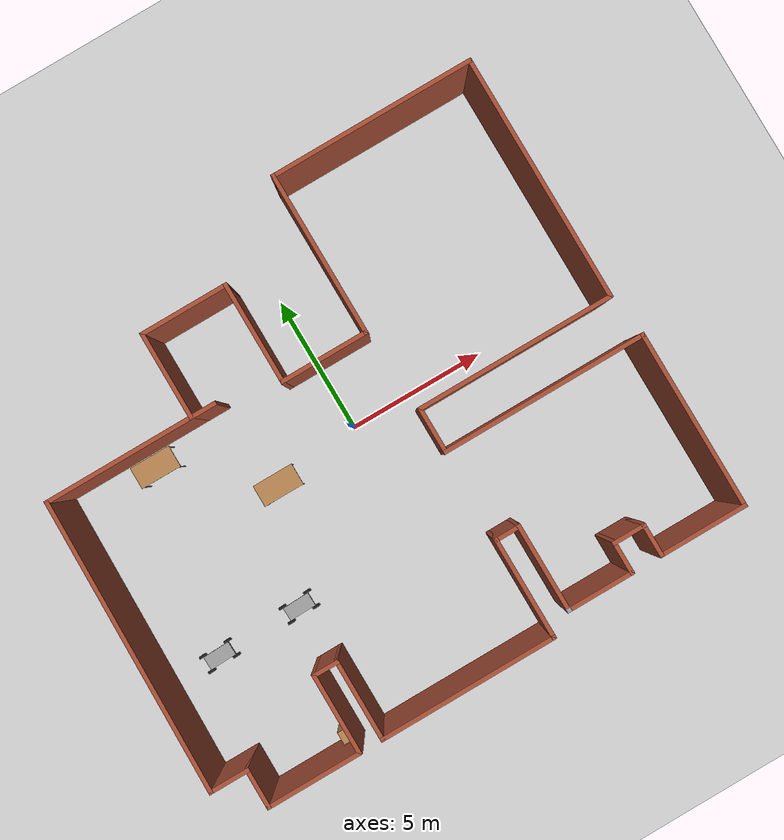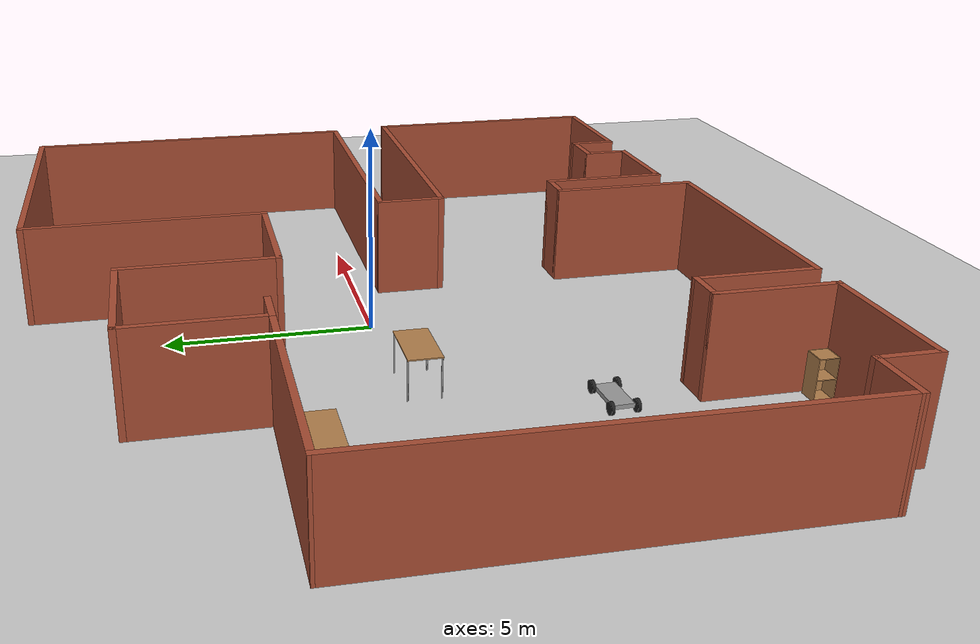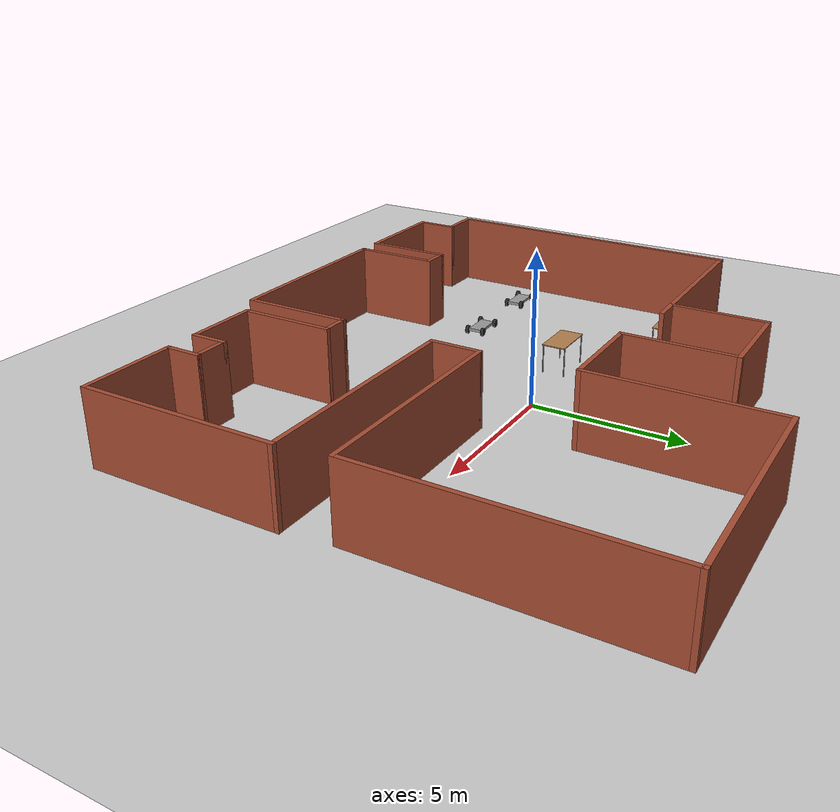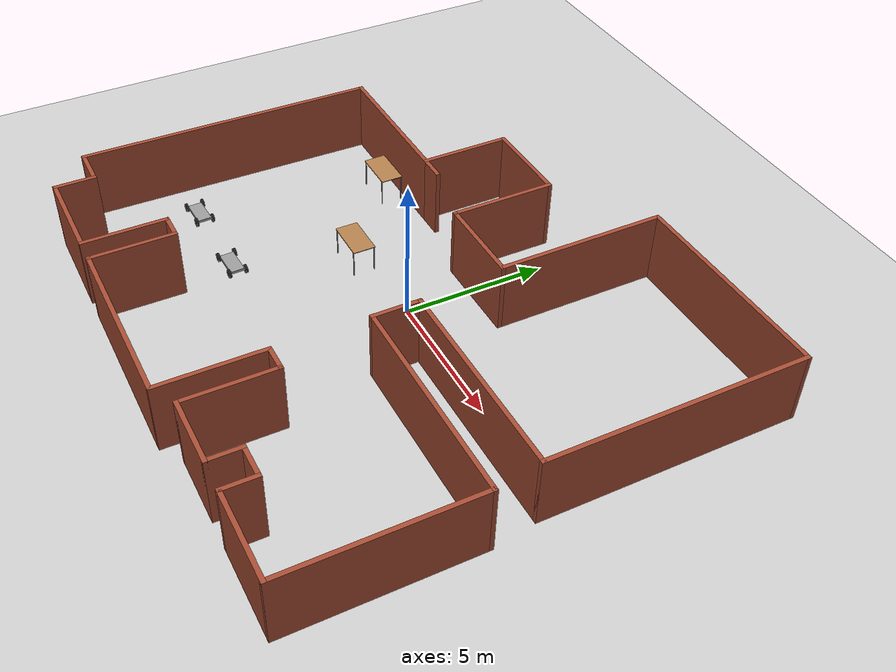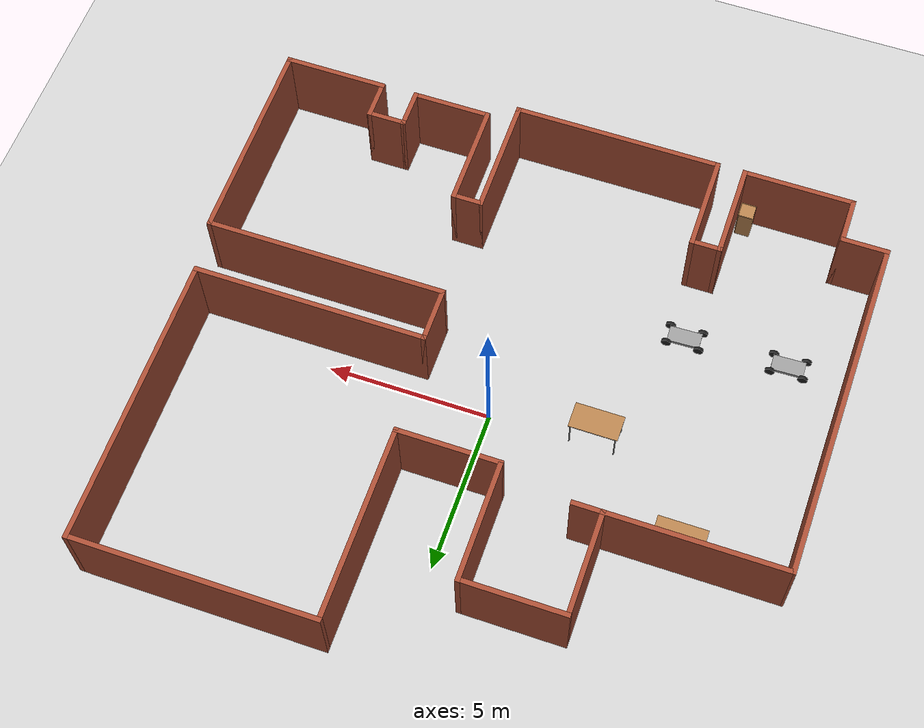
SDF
<sdf version="1.6">
 <world name="default">
  <model name="ground_plane">
   <static>1</static>
   <link name="link">
    <collision name="collision">
     <geometry><plane><normal>0 0 1</normal><size>100 100</size></plane></geometry>
     <surface>
      <contact><collide_bitmask>65535</collide_bitmask></contact>
      <friction><ode><mu>100</mu><mu2>50</mu2></ode></friction>
     </surface>
    </collision>
    <visual name="visual">
     <cast_shadows>0</cast_shadows>
     <geometry><plane><normal>0 0 1</normal><size>100 100</size></plane></geometry>
     <material>
      <script><uri>file://media/materials/scripts/gazebo.material</uri><name>Gazebo/Grey</name></script>
     </material>
    </visual>
   </link>
  </model>
  <model name="map_105">
   <pose>-0.114077 -0.470206 0 0 -0 0</pose>
   <link name="Wall_10">
    <collision name="Wall_10_Collision">
     <geometry><box><size>3.5 0.15 2.5</size></box></geometry>
     <pose>0 0 1.25 0 -0 0</pose>
    </collision>
    <visual name="Wall_10_Visual">
     <pose>0 0 1.25 0 -0 0</pose>
     <geometry><box><size>3.5 0.15 2.5</size></box></geometry>
     <material>
      <script><uri>file://media/materials/scripts/gazebo.material</uri><name>Gazebo/Bricks</name></script>
      <ambient>1 1 1 1</ambient>
     </material>
     <meta><layer>0</layer></meta>
    </visual>
    <pose>-6.62447 -8.65 0 0 -0 0</pose>
   </link>
   <link name="Wall_11">
    <collision name="Wall_11_Collision">
     <geometry><box><size>3 0.15 2.5</size></box></geometry>
     <pose>0 0 1.25 0 -0 0</pose>
    </collision>
    <visual name="Wall_11_Visual">
     <pose>0 0 1.25 0 -0 0</pose>
     <geometry><box><size>3 0.15 2.5</size></box></geometry>
     <material>
      <script><uri>file://media/materials/scripts/gazebo.material</uri><name>Gazebo/Bricks</name></script>
      <ambient>1 1 1 1</ambient>
     </material>
     <meta><layer>0</layer></meta>
    </visual>
    <pose>-4.94947 -7.225 0 0 -0 1.5708</pose>
   </link>
   <link name="Wall_12">
    <collision name="Wall_12_Collision">
     <geometry><box><size>1 0.15 2.5</size></box></geometry>
     <pose>0 0 1.25 0 -0 0</pose>
    </collision>
    <visual name="Wall_12_Visual">
     <pose>0 0 1.25 0 -0 0</pose>
     <geometry><box><size>1 0.15 2.5</size></box></geometry>
     <material>
      <script><uri>file://media/materials/scripts/gazebo.material</uri><name>Gazebo/Bricks</name></script>
      <ambient>1 1 1 1</ambient>
     </material>
     <meta><layer>0</layer></meta>
    </visual>
    <pose>-4.52447 -5.8 0 0 -0 0</pose>
   </link>
   <link name="Wall_13">
    <collision name="Wall_13_Collision">
     <geometry><box><size>3 0.15 2.5</size></box></geometry>
     <pose>0 0 1.25 0 -0 0</pose>
    </collision>
    <visual name="Wall_13_Visual">
     <pose>0 0 1.25 0 -0 0</pose>
     <geometry><box><size>3 0.15 2.5</size></box></geometry>
     <material>
      <script><uri>file://media/materials/scripts/gazebo.material</uri><name>Gazebo/Bricks</name></script>
      <ambient>1 1 1 1</ambient>
     </material>
     <meta><layer>0</layer></meta>
    </visual>
    <pose>-4.09947 -7.225 0 0 -0 -1.5708</pose>
   </link>
   <link name="Wall_14">
    <collision name="Wall_14_Collision">
     <geometry><box><size>6.5 0.15 2.5</size></box></geometry>
     <pose>0 0 1.25 0 -0 0</pose>
    </collision>
    <visual name="Wall_14_Visual">
     <pose>0 0 1.25 0 -0 0</pose>
     <geometry><box><size>6.5 0.15 2.5</size></box></geometry>
     <material>
      <script><uri>file://media/materials/scripts/gazebo.material</uri><name>Gazebo/Bricks</name></script>
      <ambient>1 1 1 1</ambient>
     </material>
     <meta><layer>0</layer></meta>
    </visual>
    <pose>-0.924473 -8.65 0 0 -0 0</pose>
   </link>
   <link name="Wall_21">
    <collision name="Wall_21_Collision">
     <geometry><box><size>2.5 0.15 2.5</size></box></geometry>
     <pose>0 0 1.25 0 -0 0</pose>
    </collision>
    <visual name="Wall_21_Visual">
     <pose>0 0 1.25 0 -0 0</pose>
     <geometry><box><size>2.5 0.15 2.5</size></box></geometry>
     <material>
      <script><uri>file://media/materials/scripts/gazebo.material</uri><name>Gazebo/Bricks</name></script>
      <ambient>1 1 1 1</ambient>
     </material>
     <meta><layer>0</layer></meta>
    </visual>
    <pose>4.27553 -8.15 0 0 -0 0</pose>
   </link>
   <link name="Wall_22">
    <collision name="Wall_22_Collision">
     <geometry><box><size>1.25 0.15 2.5</size></box></geometry>
     <pose>0 0 1.25 0 -0 0</pose>
    </collision>
    <visual name="Wall_22_Visual">
     <pose>0 0 1.25 0 -0 0</pose>
     <geometry><box><size>1.25 0.15 2.5</size></box></geometry>
     <material>
      <script><uri>file://media/materials/scripts/gazebo.material</uri><name>Gazebo/Bricks</name></script>
      <ambient>1 1 1 1</ambient>
     </material>
     <meta><layer>0</layer></meta>
    </visual>
    <pose>5.45053 -7.6 0 0 -0 1.5708</pose>
   </link>
   <link name="Wall_23">
    <collision name="Wall_23_Collision">
     <geometry><box><size>1.25 0.15 2.5</size></box></geometry>
     <pose>0 0 1.25 0 -0 0</pose>
    </collision>
    <visual name="Wall_23_Visual">
     <pose>0 0 1.25 0 -0 0</pose>
     <geometry><box><size>1.25 0.15 2.5</size></box></geometry>
     <material>
      <script><uri>file://media/materials/scripts/gazebo.material</uri><name>Gazebo/Bricks</name></script>
      <ambient>1 1 1 1</ambient>
     </material>
     <meta><layer>0</layer></meta>
    </visual>
    <pose>6.00053 -7.05 0 0 -0 0</pose>
   </link>
   <link name="Wall_24">
    <collision name="Wall_24_Collision">
     <geometry><box><size>1.25 0.15 2.5</size></box></geometry>
     <pose>0 0 1.25 0 -0 0</pose>
    </collision>
    <visual name="Wall_24_Visual">
     <pose>0 0 1.25 0 -0 0</pose>
     <geometry><box><size>1.25 0.15 2.5</size></box></geometry>
     <material>
      <script><uri>file://media/materials/scripts/gazebo.material</uri><name>Gazebo/Bricks</name></script>
      <ambient>1 1 1 1</ambient>
     </material>
     <meta><layer>0</layer></meta>
    </visual>
    <pose>6.55053 -7.6 0 0 -0 -1.5708</pose>
   </link>
   <link name="Wall_25">
    <collision name="Wall_25_Collision">
     <geometry><box><size>3.25 0.15 2.5</size></box></geometry>
     <pose>0 0 1.25 0 -0 0</pose>
    </collision>
    <visual name="Wall_25_Visual">
     <pose>0 0 1.25 0 -0 0</pose>
     <geometry><box><size>3.25 0.15 2.5</size></box></geometry>
     <material>
      <script><uri>file://media/materials/scripts/gazebo.material</uri><name>Gazebo/Bricks</name></script>
      <ambient>1 1 1 1</ambient>
     </material>
     <meta><layer>0</layer></meta>
    </visual>
    <pose>8.10053 -8.15 0 0 -0 0</pose>
   </link>
   <link name="Wall_26">
    <collision name="Wall_26_Collision">
     <geometry><box><size>6.5 0.15 2.5</size></box></geometry>
     <pose>0 0 1.25 0 -0 0</pose>
    </collision>
    <visual name="Wall_26_Visual">
     <pose>0 0 1.25 0 -0 0</pose>
     <geometry><box><size>6.5 0.15 2.5</size></box></geometry>
     <material>
      <script><uri>file://media/materials/scripts/gazebo.material</uri><name>Gazebo/Bricks</name></script>
      <ambient>1 1 1 1</ambient>
     </material>
     <meta><layer>0</layer></meta>
    </visual>
    <pose>9.65053 -4.975 0 0 -0 1.5708</pose>
   </link>
   <link name="Wall_28">
    <collision name="Wall_28_Collision">
     <geometry><box><size>3.75 0.15 2.5</size></box></geometry>
     <pose>0 0 1.25 0 -0 0</pose>
    </collision>
    <visual name="Wall_28_Visual">
     <pose>0 0 1.25 0 -0 0</pose>
     <geometry><box><size>3.75 0.15 2.5</size></box></geometry>
     <material>
      <script><uri>file://media/materials/scripts/gazebo.material</uri><name>Gazebo/Bricks</name></script>
      <ambient>1 1 1 1</ambient>
     </material>
     <meta><layer>0</layer></meta>
    </visual>
    <pose>2.25053 -6.85 0 0 -0 1.5708</pose>
   </link>
   <link name="Wall_29">
    <collision name="Wall_29_Collision">
     <geometry><box><size>1 0.15 2.5</size></box></geometry>
     <pose>0 0 1.25 0 -0 0</pose>
    </collision>
    <visual name="Wall_29_Visual">
     <pose>0 0 1.25 0 -0 0</pose>
     <geometry><box><size>1 0.15 2.5</size></box></geometry>
     <material>
      <script><uri>file://media/materials/scripts/gazebo.material</uri><name>Gazebo/Bricks</name></script>
      <ambient>1 1 1 1</ambient>
     </material>
     <meta><layer>0</layer></meta>
    </visual>
    <pose>2.67553 -5.05 0 0 -0 0</pose>
   </link>
   <link name="Wall_31">
    <collision name="Wall_31_Collision">
     <geometry><box><size>3.25 0.15 2.5</size></box></geometry>
     <pose>0 0 1.25 0 -0 0</pose>
    </collision>
    <visual name="Wall_31_Visual">
     <pose>0 0 1.25 0 -0 0</pose>
     <geometry><box><size>3.25 0.15 2.5</size></box></geometry>
     <material>
      <script><uri>file://media/materials/scripts/gazebo.material</uri><name>Gazebo/Bricks</name></script>
      <ambient>1 1 1 1</ambient>
     </material>
     <meta><layer>0</layer></meta>
    </visual>
    <pose>3.10053 -6.6 0 0 -0 -1.5708</pose>
   </link>
   <link name="Wall_32">
    <collision name="Wall_32_Collision">
     <geometry><box><size>0.16 0.15 2.5</size></box></geometry>
     <pose>0 0 1.25 0 -0 0</pose>
    </collision>
    <visual name="Wall_32_Visual">
     <pose>0 0 1.25 0 -0 0</pose>
     <geometry><box><size>0.16 0.15 2.5</size></box></geometry>
     <material>
      <script><uri>file://media/materials/scripts/gazebo.material</uri><name>Gazebo/Grey</name></script>
      <ambient>0 0 0 1</ambient>
     </material>
     <meta><layer>0</layer></meta>
    </visual>
    <pose>3.10553 -8.15 0 0 -0 0</pose>
   </link>
   <link name="Wall_33">
    <collision name="Wall_33_Collision">
     <geometry><box><size>7.5 0.15 2.5</size></box></geometry>
     <pose>0 0 1.25 0 -0 0</pose>
    </collision>
    <visual name="Wall_33_Visual">
     <pose>0 0 1.25 0 -0 0</pose>
     <geometry><box><size>7.5 0.15 2.5</size></box></geometry>
     <material>
      <script><uri>file://media/materials/scripts/gazebo.material</uri><name>Gazebo/Bricks</name></script>
      <ambient>1 1 1 1</ambient>
     </material>
     <meta><layer>0</layer></meta>
    </visual>
    <pose>5.97553 -1.8 0 0 -0 3.14159</pose>
   </link>
   <link name="Wall_34">
    <collision name="Wall_34_Collision">
     <geometry><box><size>1.75 0.15 2.5</size></box></geometry>
     <pose>0 0 1.25 0 -0 0</pose>
    </collision>
    <visual name="Wall_34_Visual">
     <pose>0 0 1.25 0 -0 0</pose>
     <geometry><box><size>1.75 0.15 2.5</size></box></geometry>
     <material>
      <script><uri>file://media/materials/scripts/gazebo.material</uri><name>Gazebo/Bricks</name></script>
      <ambient>1 1 1 1</ambient>
     </material>
     <meta><layer>0</layer></meta>
    </visual>
    <pose>2.30053 -1 0 0 -0 1.5708</pose>
   </link>
   <link name="Wall_35">
    <collision name="Wall_35_Collision">
     <geometry><box><size>7.25 0.15 2.5</size></box></geometry>
     <pose>0 0 1.25 0 -0 0</pose>
    </collision>
    <visual name="Wall_35_Visual">
     <pose>0 0 1.25 0 -0 0</pose>
     <geometry><box><size>7.25 0.15 2.5</size></box></geometry>
     <material>
      <script><uri>file://media/materials/scripts/gazebo.material</uri><name>Gazebo/Bricks</name></script>
      <ambient>1 1 1 1</ambient>
     </material>
     <meta><layer>0</layer></meta>
    </visual>
    <pose>5.85053 -0.2 0 0 -0 0</pose>
   </link>
   <link name="Wall_37">
    <collision name="Wall_37_Collision">
     <geometry><box><size>9 0.15 2.5</size></box></geometry>
     <pose>0 0 1.25 0 -0 0</pose>
    </collision>
    <visual name="Wall_37_Visual">
     <pose>0 0 1.25 0 -0 0</pose>
     <geometry><box><size>9 0.15 2.5</size></box></geometry>
     <material>
      <script><uri>file://media/materials/scripts/gazebo.material</uri><name>Gazebo/Bricks</name></script>
      <ambient>1 1 1 1</ambient>
     </material>
     <meta><layer>0</layer></meta>
    </visual>
    <pose>9.40053 4.225 0 0 -0 1.5708</pose>
   </link>
   <link name="Wall_40">
    <collision name="Wall_40_Collision">
     <geometry><box><size>7.5 0.15 2.5</size></box></geometry>
     <pose>0 0 1.25 0 -0 0</pose>
    </collision>
    <visual name="Wall_40_Visual">
     <pose>0 0 1.25 0 -0 0</pose>
     <geometry><box><size>7.5 0.15 2.5</size></box></geometry>
     <material>
      <script><uri>file://media/materials/scripts/gazebo.material</uri><name>Gazebo/Bricks</name></script>
      <ambient>1 1 1 1</ambient>
     </material>
     <meta><layer>0</layer></meta>
    </visual>
    <pose>5.72553 8.65 0 0 -0 3.14159</pose>
   </link>
   <link name="Wall_41">
    <collision name="Wall_41_Collision">
     <geometry><box><size>6 0.15 2.5</size></box></geometry>
     <pose>0 0 1.25 0 -0 0</pose>
    </collision>
    <visual name="Wall_41_Visual">
     <pose>0 0 1.25 0 -0 0</pose>
     <geometry><box><size>6 0.15 2.5</size></box></geometry>
     <material>
      <script><uri>file://media/materials/scripts/gazebo.material</uri><name>Gazebo/Bricks</name></script>
      <ambient>1 1 1 1</ambient>
     </material>
     <meta><layer>0</layer></meta>
    </visual>
    <pose>2.05053 5.725 0 0 -0 -1.5708</pose>
   </link>
   <link name="Wall_49">
    <collision name="Wall_49_Collision">
     <geometry><box><size>3.25 0.15 2.5</size></box></geometry>
     <pose>0 0 1.25 0 -0 0</pose>
    </collision>
    <visual name="Wall_49_Visual">
     <pose>0 0 1.25 0 -0 0</pose>
     <geometry><box><size>3.25 0.15 2.5</size></box></geometry>
     <material>
      <script><uri>file://media/materials/scripts/gazebo.material</uri><name>Gazebo/Bricks</name></script>
      <ambient>1 1 1 1</ambient>
     </material>
     <meta><layer>0</layer></meta>
    </visual>
    <pose>0.500527 2.8 0 0 -0 3.14159</pose>
   </link>
   <link name="Wall_50">
    <collision name="Wall_50_Collision">
     <geometry><box><size>3.75 0.15 2.5</size></box></geometry>
     <pose>0 0 1.25 0 -0 0</pose>
    </collision>
    <visual name="Wall_50_Visual">
     <pose>0 0 1.25 0 -0 0</pose>
     <geometry><box><size>3.75 0.15 2.5</size></box></geometry>
     <material>
      <script><uri>file://media/materials/scripts/gazebo.material</uri><name>Gazebo/Bricks</name></script>
      <ambient>1 1 1 1</ambient>
     </material>
     <meta><layer>0</layer></meta>
    </visual>
    <pose>-1.04947 4.6 0 0 -0 1.5708</pose>
   </link>
   <link name="Wall_53">
    <collision name="Wall_53_Collision">
     <geometry><box><size>3.25 0.15 2.5</size></box></geometry>
     <pose>0 0 1.25 0 -0 0</pose>
    </collision>
    <visual name="Wall_53_Visual">
     <pose>0 0 1.25 0 -0 0</pose>
     <geometry><box><size>3.25 0.15 2.5</size></box></geometry>
     <material>
      <script><uri>file://media/materials/scripts/gazebo.material</uri><name>Gazebo/Bricks</name></script>
      <ambient>1 1 1 1</ambient>
     </material>
     <meta><layer>0</layer></meta>
    </visual>
    <pose>-2.59947 6.4 0 0 -0 3.14159</pose>
   </link>
   <link name="Wall_54">
    <collision name="Wall_54_Collision">
     <geometry><box><size>3.25 0.15 2.5</size></box></geometry>
     <pose>0 0 1.25 0 -0 0</pose>
    </collision>
    <visual name="Wall_54_Visual">
     <pose>0 0 1.25 0 -0 0</pose>
     <geometry><box><size>3.25 0.15 2.5</size></box></geometry>
     <material>
      <script><uri>file://media/materials/scripts/gazebo.material</uri><name>Gazebo/Bricks</name></script>
      <ambient>1 1 1 1</ambient>
     </material>
     <meta><layer>0</layer></meta>
    </visual>
    <pose>-4.14947 4.85 0 0 -0 -1.5708</pose>
   </link>
   <link name="Wall_55">
    <collision name="Wall_55_Collision">
     <geometry><box><size>5.5 0.15 2.5</size></box></geometry>
     <pose>0 0 1.25 0 -0 0</pose>
    </collision>
    <visual name="Wall_55_Visual">
     <pose>0 0 1.25 0 -0 0</pose>
     <geometry><box><size>5.5 0.15 2.5</size></box></geometry>
     <material>
      <script><uri>file://media/materials/scripts/gazebo.material</uri><name>Gazebo/Bricks</name></script>
      <ambient>1 1 1 1</ambient>
     </material>
     <meta><layer>0</layer></meta>
    </visual>
    <pose>-6.82447 3.3 0 0 -0 3.14159</pose>
   </link>
   <link name="Wall_57">
    <collision name="Wall_57_Collision">
     <geometry><box><size>1 0.15 2.5</size></box></geometry>
     <pose>0 0 1.25 0 -0 0</pose>
    </collision>
    <visual name="Wall_57_Visual">
     <pose>0 0 1.25 0 -0 0</pose>
     <geometry><box><size>1 0.15 2.5</size></box></geometry>
     <material>
      <script><uri>file://media/materials/scripts/gazebo.material</uri><name>Gazebo/Bricks</name></script>
      <ambient>1 1 1 1</ambient>
     </material>
     <meta><layer>0</layer></meta>
    </visual>
    <pose>-3.72447 3.3 0 0 -0 0</pose>
   </link>
   <link name="Wall_59">
    <collision name="Wall_59_Collision">
     <geometry><box><size>10.7511 0.15 2.5</size></box></geometry>
     <pose>0 0 1.25 0 -0 0</pose>
    </collision>
    <visual name="Wall_59_Visual">
     <pose>0 0 1.25 0 -0 0</pose>
     <geometry><box><size>10.7511 0.15 2.5</size></box></geometry>
     <material>
      <script><uri>file://media/materials/scripts/gazebo.material</uri><name>Gazebo/Bricks</name></script>
      <ambient>1 1 1 1</ambient>
     </material>
     <meta><layer>0</layer></meta>
    </visual>
    <pose>-9.57447 -2 0 0 -0 -1.58495</pose>
   </link>
   <link name="Wall_8">
    <collision name="Wall_8_Collision">
     <geometry><box><size>1.5 0.15 2.5</size></box></geometry>
     <pose>0 0 1.25 0 -0 0</pose>
    </collision>
    <visual name="Wall_8_Visual">
     <pose>0 0 1.25 0 -0 0</pose>
     <geometry><box><size>1.5 0.15 2.5</size></box></geometry>
     <material>
      <script><uri>file://media/materials/scripts/gazebo.material</uri><name>Gazebo/Bricks</name></script>
      <ambient>1 1 1 1</ambient>
     </material>
     <meta><layer>0</layer></meta>
    </visual>
    <pose>-8.97447 -7.3 0 0 -0 0</pose>
   </link>
   <link name="Wall_9">
    <collision name="Wall_9_Collision">
     <geometry><box><size>1.5 0.15 2.5</size></box></geometry>
     <pose>0 0 1.25 0 -0 0</pose>
    </collision>
    <visual name="Wall_9_Visual">
     <pose>0 0 1.25 0 -0 0</pose>
     <geometry><box><size>1.5 0.15 2.5</size></box></geometry>
     <material>
      <script><uri>file://media/materials/scripts/gazebo.material</uri><name>Gazebo/Bricks</name></script>
      <ambient>1 1 1 1</ambient>
     </material>
     <meta><layer>0</layer></meta>
    </visual>
    <pose>-8.29947 -7.975 0 0 -0 -1.5708</pose>
   </link>
   <static>1</static>
  </model>
  <model name="cart_rigid_suspension">
   <link name="chassis">
    <pose>0 0 0.15 0 -0 0</pose>
    <inertial>
     <pose>0.1 0 0 0 -0 0</pose>
     <mass>10</mass>
     <inertia>
      <ixx>0.216667</ixx>
      <iyy>0.841667</iyy>
      <izz>1.04167</izz>
      <ixy>0</ixy>
      <ixz>0</ixz>
      <iyz>0</iyz>
     </inertia>
    </inertial>
    <collision name="collision"><geometry><box><size>1 0.5 0.1</size></box></geometry></collision>
    <visual name="visual">
     <geometry><box><size>1 0.5 0.1</size></box></geometry>
     <material>
      <script><uri>file://media/materials/scripts/gazebo.material</uri><name>Gazebo/Grey</name></script>
     </material>
    </visual>
   </link>
   <link name="wheel_front_left">
    <pose>0.5 0.298 0.15 -1.5708 0 0</pose>
    <inertial>
     <mass>0.5</mass>
     <inertia>
      <ixx>0.00307917</ixx>
      <iyy>0.00307917</iyy>
      <izz>0.005625</izz>
      <ixy>0</ixy>
      <ixz>0</ixz>
      <iyz>0</iyz>
     </inertia>
    </inertial>
    <collision name="collision">
     <geometry><cylinder><radius>0.15</radius><length>0.08</length></cylinder></geometry>
    </collision>
    <visual name="visual">
     <geometry><cylinder><radius>0.15</radius><length>0.08</length></cylinder></geometry>
     <material>
      <script><uri>file://media/materials/scripts/gazebo.material</uri><name>Gazebo/Black</name></script>
     </material>
    </visual>
   </link>
   <joint name="wheel_front_left_spin" type="revolute">
    <parent>chassis</parent>
    <child>wheel_front_left</child>
    <axis>
     <xyz>0 0 1</xyz>
     <use_parent_model_frame>0</use_parent_model_frame>
     <limit><lower>-1e+16</lower><upper>1e+16</upper></limit>
     <dynamics><spring_reference>0</spring_reference><spring_stiffness>0</spring_stiffness></dynamics>
    </axis>
   </joint>
   <link name="wheel_front_right">
    <pose>0.5 -0.298 0.15 -1.5708 0 0</pose>
    <inertial>
     <mass>0.5</mass>
     <inertia>
      <ixx>0.00307917</ixx>
      <iyy>0.00307917</iyy>
      <izz>0.005625</izz>
      <ixy>0</ixy>
      <ixz>0</ixz>
      <iyz>0</iyz>
     </inertia>
    </inertial>
    <collision name="collision">
     <geometry><cylinder><radius>0.15</radius><length>0.08</length></cylinder></geometry>
    </collision>
    <visual name="visual">
     <geometry><cylinder><radius>0.15</radius><length>0.08</length></cylinder></geometry>
     <material>
      <script><uri>file://media/materials/scripts/gazebo.material</uri><name>Gazebo/Black</name></script>
     </material>
    </visual>
   </link>
   <joint name="wheel_front_right_spin" type="revolute">
    <parent>chassis</parent>
    <child>wheel_front_right</child>
    <axis>
     <xyz>0 0 1</xyz>
     <use_parent_model_frame>0</use_parent_model_frame>
     <limit><lower>-1e+16</lower><upper>1e+16</upper></limit>
     <dynamics><spring_reference>0</spring_reference><spring_stiffness>0</spring_stiffness></dynamics>
    </axis>
   </joint>
   <link name="wheel_rear_left">
    <pose>-0.5 0.298 0.15 -1.5708 0 0</pose>
    <inertial>
     <mass>0.5</mass>
     <inertia>
      <ixx>0.00307917</ixx>
      <iyy>0.00307917</iyy>
      <izz>0.005625</izz>
      <ixy>0</ixy>
      <ixz>0</ixz>
      <iyz>0</iyz>
     </inertia>
    </inertial>
    <collision name="collision">
     <geometry><cylinder><radius>0.15</radius><length>0.08</length></cylinder></geometry>
    </collision>
    <visual name="visual">
     <geometry><cylinder><radius>0.15</radius><length>0.08</length></cylinder></geometry>
     <material>
      <script><uri>file://media/materials/scripts/gazebo.material</uri><name>Gazebo/Black</name></script>
     </material>
    </visual>
   </link>
   <joint name="wheel_rear_left_spin" type="revolute">
    <parent>chassis</parent>
    <child>wheel_rear_left</child>
    <axis>
     <xyz>0 0 1</xyz>
     <use_parent_model_frame>0</use_parent_model_frame>
     <limit><lower>-1e+16</lower><upper>1e+16</upper></limit>
     <dynamics><spring_reference>0</spring_reference><spring_stiffness>0</spring_stiffness></dynamics>
    </axis>
   </joint>
   <link name="wheel_rear_right">
    <pose>-0.5 -0.298 0.15 -1.5708 0 0</pose>
    <inertial>
     <mass>0.5</mass>
     <inertia>
      <ixx>0.00307917</ixx>
      <iyy>0.00307917</iyy>
      <izz>0.005625</izz>
      <ixy>0</ixy>
      <ixz>0</ixz>
      <iyz>0</iyz>
     </inertia>
    </inertial>
    <collision name="collision">
     <geometry><cylinder><radius>0.15</radius><length>0.08</length></cylinder></geometry>
    </collision>
    <visual name="visual">
     <geometry><cylinder><radius>0.15</radius><length>0.08</length></cylinder></geometry>
     <material>
      <script><uri>file://media/materials/scripts/gazebo.material</uri><name>Gazebo/Black</name></script>
     </material>
    </visual>
   </link>
   <joint name="wheel_rear_right_spin" type="revolute">
    <parent>chassis</parent>
    <child>wheel_rear_right</child>
    <axis>
     <xyz>0 0 1</xyz>
     <use_parent_model_frame>0</use_parent_model_frame>
     <limit><lower>-1e+16</lower><upper>1e+16</upper></limit>
     <dynamics><spring_reference>0</spring_reference><spring_stiffness>0</spring_stiffness></dynamics>
    </axis>
   </joint>
   <pose>-7.95867 -4.41521 -7e-06 0 -1.4e-05 0.033709</pose>
  </model>
  <model name="cart_rigid_suspension_0">
   <link name="chassis">
    <pose>0 0 0.15 0 -0 0</pose>
    <inertial>
     <pose>0.1 0 0 0 -0 0</pose>
     <mass>10</mass>
     <inertia>
      <ixx>0.216667</ixx>
      <iyy>0.841667</iyy>
      <izz>1.04167</izz>
      <ixy>0</ixy>
      <ixz>0</ixz>
      <iyz>0</iyz>
     </inertia>
    </inertial>
    <collision name="collision"><geometry><box><size>1 0.5 0.1</size></box></geometry></collision>
    <visual name="visual">
     <geometry><box><size>1 0.5 0.1</size></box></geometry>
     <material>
      <script><uri>file://media/materials/scripts/gazebo.material</uri><name>Gazebo/Grey</name></script>
     </material>
    </visual>
   </link>
   <link name="wheel_front_left">
    <pose>0.5 0.298 0.15 -1.5708 0 0</pose>
    <inertial>
     <mass>0.5</mass>
     <inertia>
      <ixx>0.00307917</ixx>
      <iyy>0.00307917</iyy>
      <izz>0.005625</izz>
      <ixy>0</ixy>
      <ixz>0</ixz>
      <iyz>0</iyz>
     </inertia>
    </inertial>
    <collision name="collision">
     <geometry><cylinder><radius>0.15</radius><length>0.08</length></cylinder></geometry>
    </collision>
    <visual name="visual">
     <geometry><cylinder><radius>0.15</radius><length>0.08</length></cylinder></geometry>
     <material>
      <script><uri>file://media/materials/scripts/gazebo.material</uri><name>Gazebo/Black</name></script>
     </material>
    </visual>
   </link>
   <joint name="wheel_front_left_spin" type="revolute">
    <parent>chassis</parent>
    <child>wheel_front_left</child>
    <axis>
     <xyz>0 0 1</xyz>
     <use_parent_model_frame>0</use_parent_model_frame>
     <limit><lower>-1e+16</lower><upper>1e+16</upper></limit>
     <dynamics><spring_reference>0</spring_reference><spring_stiffness>0</spring_stiffness></dynamics>
    </axis>
   </joint>
   <link name="wheel_front_right">
    <pose>0.5 -0.298 0.15 -1.5708 0 0</pose>
    <inertial>
     <mass>0.5</mass>
     <inertia>
      <ixx>0.00307917</ixx>
      <iyy>0.00307917</iyy>
      <izz>0.005625</izz>
      <ixy>0</ixy>
      <ixz>0</ixz>
      <iyz>0</iyz>
     </inertia>
    </inertial>
    <collision name="collision">
     <geometry><cylinder><radius>0.15</radius><length>0.08</length></cylinder></geometry>
    </collision>
    <visual name="visual">
     <geometry><cylinder><radius>0.15</radius><length>0.08</length></cylinder></geometry>
     <material>
      <script><uri>file://media/materials/scripts/gazebo.material</uri><name>Gazebo/Black</name></script>
     </material>
    </visual>
   </link>
   <joint name="wheel_front_right_spin" type="revolute">
    <parent>chassis</parent>
    <child>wheel_front_right</child>
    <axis>
     <xyz>0 0 1</xyz>
     <use_parent_model_frame>0</use_parent_model_frame>
     <limit><lower>-1e+16</lower><upper>1e+16</upper></limit>
     <dynamics><spring_reference>0</spring_reference><spring_stiffness>0</spring_stiffness></dynamics>
    </axis>
   </joint>
   <link name="wheel_rear_left">
    <pose>-0.5 0.298 0.15 -1.5708 0 0</pose>
    <inertial>
     <mass>0.5</mass>
     <inertia>
      <ixx>0.00307917</ixx>
      <iyy>0.00307917</iyy>
      <izz>0.005625</izz>
      <ixy>0</ixy>
      <ixz>0</ixz>
      <iyz>0</iyz>
     </inertia>
    </inertial>
    <collision name="collision">
     <geometry><cylinder><radius>0.15</radius><length>0.08</length></cylinder></geometry>
    </collision>
    <visual name="visual">
     <geometry><cylinder><radius>0.15</radius><length>0.08</length></cylinder></geometry>
     <material>
      <script><uri>file://media/materials/scripts/gazebo.material</uri><name>Gazebo/Black</name></script>
     </material>
    </visual>
   </link>
   <joint name="wheel_rear_left_spin" type="revolute">
    <parent>chassis</parent>
    <child>wheel_rear_left</child>
    <axis>
     <xyz>0 0 1</xyz>
     <use_parent_model_frame>0</use_parent_model_frame>
     <limit><lower>-1e+16</lower><upper>1e+16</upper></limit>
     <dynamics><spring_reference>0</spring_reference><spring_stiffness>0</spring_stiffness></dynamics>
    </axis>
   </joint>
   <link name="wheel_rear_right">
    <pose>-0.5 -0.298 0.15 -1.5708 0 0</pose>
    <inertial>
     <mass>0.5</mass>
     <inertia>
      <ixx>0.00307917</ixx>
      <iyy>0.00307917</iyy>
      <izz>0.005625</izz>
      <ixy>0</ixy>
      <ixz>0</ixz>
      <iyz>0</iyz>
     </inertia>
    </inertial>
    <collision name="collision">
     <geometry><cylinder><radius>0.15</radius><length>0.08</length></cylinder></geometry>
    </collision>
    <visual name="visual">
     <geometry><cylinder><radius>0.15</radius><length>0.08</length></cylinder></geometry>
     <material>
      <script><uri>file://media/materials/scripts/gazebo.material</uri><name>Gazebo/Black</name></script>
     </material>
    </visual>
   </link>
   <joint name="wheel_rear_right_spin" type="revolute">
    <parent>chassis</parent>
    <child>wheel_rear_right</child>
    <axis>
     <xyz>0 0 1</xyz>
     <use_parent_model_frame>0</use_parent_model_frame>
     <limit><lower>-1e+16</lower><upper>1e+16</upper></limit>
     <dynamics><spring_reference>0</spring_reference><spring_stiffness>0</spring_stiffness></dynamics>
    </axis>
   </joint>
   <pose>-4.75465 -4.36052 0 0 -0 0.032989</pose>
  </model>
  <model name="cabinet">
   <static>1</static>
   <link name="cabinet_bottom_plate">
    <inertial>
     <pose>0 0 -1 0 -0 0</pose>
     <inertia><ixx>2.05</ixx><ixy>0</ixy><ixz>0</ixz><iyy>2.05</iyy><iyz>0</iyz><izz>2.05</izz></inertia>
     <mass>25</mass>
    </inertial>
    <collision name="cabinet_bottom_plate_geom">
     <pose>0 0 0.01 0 -0 0</pose>
     <geometry><box><size>0.45 0.45 0.02</size></box></geometry>
    </collision>
    <visual name="cabinet_bottom_plate_geom_visual">
     <pose>0 0 0.01 0 -0 0</pose>
     <geometry><box><size>0.45 0.45 0.02</size></box></geometry>
     <material>
      <script><uri>file://media/materials/scripts/gazebo.material</uri><name>Gazebo/Wood</name></script>
     </material>
    </visual>
    <collision name="cabinet_bottom_plate_geom_cabinet_back_plate">
     <pose>0.235 0 0.51 0 -0 0</pose>
     <geometry><box><size>0.02 0.45 1.02</size></box></geometry>
    </collision>
    <visual name="cabinet_bottom_plate_geom_cabinet_back_plate_visual">
     <pose>0.235 0 0.51 0 -0 0</pose>
     <geometry><box><size>0.02 0.45 1.02</size></box></geometry>
     <material>
      <script><uri>file://media/materials/scripts/gazebo.material</uri><name>Gazebo/Wood</name></script>
     </material>
    </visual>
    <collision name="cabinet_bottom_plate_geom_cabinet_left_plate">
     <pose>0 0.235 0.51 0 -0 0</pose>
     <geometry><box><size>0.45 0.02 1.02</size></box></geometry>
    </collision>
    <visual name="cabinet_bottom_plate_geom_cabinet_left_plate_visual">
     <pose>0 0.235 0.51 0 -0 0</pose>
     <geometry><box><size>0.45 0.02 1.02</size></box></geometry>
     <material>
      <script><uri>file://media/materials/scripts/gazebo.material</uri><name>Gazebo/Wood</name></script>
     </material>
    </visual>
    <collision name="cabinet_bottom_plate_geom_cabinet_middle_plate">
     <pose>0 0 0.51 0 -0 0</pose>
     <geometry><box><size>0.45 0.45 0.02</size></box></geometry>
    </collision>
    <visual name="cabinet_bottom_plate_geom_cabinet_middle_plate_visual">
     <pose>0 0 0.51 0 -0 0</pose>
     <geometry><box><size>0.45 0.45 0.02</size></box></geometry>
     <material>
      <script><uri>file://media/materials/scripts/gazebo.material</uri><name>Gazebo/Wood</name></script>
     </material>
    </visual>
    <collision name="cabinet_bottom_plate_geom_cabinet_right_plate">
     <pose>0 -0.235 0.51 0 -0 0</pose>
     <geometry><box><size>0.45 0.02 1.02</size></box></geometry>
    </collision>
    <visual name="cabinet_bottom_plate_geom_cabinet_right_plate_visual">
     <pose>0 -0.235 0.51 0 -0 0</pose>
     <geometry><box><size>0.45 0.02 1.02</size></box></geometry>
     <material>
      <script><uri>file://media/materials/scripts/gazebo.material</uri><name>Gazebo/Wood</name></script>
     </material>
    </visual>
    <collision name="cabinet_bottom_plate_geom_cabinet_top_plate">
     <pose>0 0 1.01 0 -0 0</pose>
     <geometry><box><size>0.45 0.45 0.02</size></box></geometry>
    </collision>
    <visual name="cabinet_bottom_plate_geom_cabinet_top_plate_visual">
     <pose>0 0 1.01 0 -0 0</pose>
     <geometry><box><size>0.45 0.45 0.02</size></box></geometry>
     <material>
      <script><uri>file://media/materials/scripts/gazebo.material</uri><name>Gazebo/Wood</name></script>
     </material>
    </visual>
   </link>
   <pose>-5.42732 -8.77925 0 0 -0 0</pose>
  </model>
  <model name="table">
   <static>1</static>
   <link name="link">
    <collision name="surface">
     <pose>0 0 1 0 -0 0</pose>
     <geometry><box><size>1.5 0.8 0.03</size></box></geometry>
     <surface><friction><ode><mu>0.6</mu><mu2>0.6</mu2></ode></friction></surface>
    </collision>
    <visual name="visual1">
     <pose>0 0 1 0 -0 0</pose>
     <geometry><box><size>1.5 0.8 0.03</size></box></geometry>
     <material>
      <script><uri>file://media/materials/scripts/gazebo.material</uri><name>Gazebo/Wood</name></script>
     </material>
    </visual>
    <collision name="front_left_leg">
     <pose>0.68 0.38 0.5 0 -0 0</pose>
     <geometry><cylinder><radius>0.02</radius><length>1</length></cylinder></geometry>
    </collision>
    <visual name="front_left_leg">
     <pose>0.68 0.38 0.5 0 -0 0</pose>
     <geometry><cylinder><radius>0.02</radius><length>1</length></cylinder></geometry>
     <material>
      <script><uri>file://media/materials/scripts/gazebo.material</uri><name>Gazebo/Grey</name></script>
     </material>
    </visual>
    <collision name="front_right_leg">
     <pose>0.68 -0.38 0.5 0 -0 0</pose>
     <geometry><cylinder><radius>0.02</radius><length>1</length></cylinder></geometry>
    </collision>
    <visual name="front_right_leg">
     <pose>0.68 -0.38 0.5 0 -0 0</pose>
     <geometry><cylinder><radius>0.02</radius><length>1</length></cylinder></geometry>
     <material>
      <script><uri>file://media/materials/scripts/gazebo.material</uri><name>Gazebo/Grey</name></script>
     </material>
    </visual>
    <collision name="back_right_leg">
     <pose>-0.68 -0.38 0.5 0 -0 0</pose>
     <geometry><cylinder><radius>0.02</radius><length>1</length></cylinder></geometry>
    </collision>
    <visual name="back_right_leg">
     <pose>-0.68 -0.38 0.5 0 -0 0</pose>
     <geometry><cylinder><radius>0.02</radius><length>1</length></cylinder></geometry>
     <material>
      <script><uri>file://media/materials/scripts/gazebo.material</uri><name>Gazebo/Grey</name></script>
     </material>
    </visual>
    <collision name="back_left_leg">
     <pose>-0.68 0.38 0.5 0 -0 0</pose>
     <geometry><cylinder><radius>0.02</radius><length>1</length></cylinder></geometry>
    </collision>
    <visual name="back_left_leg">
     <pose>-0.68 0.38 0.5 0 -0 0</pose>
     <geometry><cylinder><radius>0.02</radius><length>1</length></cylinder></geometry>
     <material>
      <script><uri>file://media/materials/scripts/gazebo.material</uri><name>Gazebo/Grey</name></script>
     </material>
    </visual>
   </link>
   <pose>-6.40087 2.19826 0 0 -0 0</pose>
  </model>
  <model name="table_0">
   <static>1</static>
   <link name="link">
    <collision name="surface">
     <pose>0 0 1 0 -0 0</pose>
     <geometry><box><size>1.5 0.8 0.03</size></box></geometry>
     <surface><friction><ode><mu>0.6</mu><mu2>0.6</mu2></ode></friction></surface>
    </collision>
    <visual name="visual1">
     <pose>0 0 1 0 -0 0</pose>
     <geometry><box><size>1.5 0.8 0.03</size></box></geometry>
     <material>
      <script><uri>file://media/materials/scripts/gazebo.material</uri><name>Gazebo/Wood</name></script>
     </material>
    </visual>
    <collision name="front_left_leg">
     <pose>0.68 0.38 0.5 0 -0 0</pose>
     <geometry><cylinder><radius>0.02</radius><length>1</length></cylinder></geometry>
    </collision>
    <visual name="front_left_leg">
     <pose>0.68 0.38 0.5 0 -0 0</pose>
     <geometry><cylinder><radius>0.02</radius><length>1</length></cylinder></geometry>
     <material>
      <script><uri>file://media/materials/scripts/gazebo.material</uri><name>Gazebo/Grey</name></script>
     </material>
    </visual>
    <collision name="front_right_leg">
     <pose>0.68 -0.38 0.5 0 -0 0</pose>
     <geometry><cylinder><radius>0.02</radius><length>1</length></cylinder></geometry>
    </collision>
    <visual name="front_right_leg">
     <pose>0.68 -0.38 0.5 0 -0 0</pose>
     <geometry><cylinder><radius>0.02</radius><length>1</length></cylinder></geometry>
     <material>
      <script><uri>file://media/materials/scripts/gazebo.material</uri><name>Gazebo/Grey</name></script>
     </material>
    </visual>
    <collision name="back_right_leg">
     <pose>-0.68 -0.38 0.5 0 -0 0</pose>
     <geometry><cylinder><radius>0.02</radius><length>1</length></cylinder></geometry>
    </collision>
    <visual name="back_right_leg">
     <pose>-0.68 -0.38 0.5 0 -0 0</pose>
     <geometry><cylinder><radius>0.02</radius><length>1</length></cylinder></geometry>
     <material>
      <script><uri>file://media/materials/scripts/gazebo.material</uri><name>Gazebo/Grey</name></script>
     </material>
    </visual>
    <collision name="back_left_leg">
     <pose>-0.68 0.38 0.5 0 -0 0</pose>
     <geometry><cylinder><radius>0.02</radius><length>1</length></cylinder></geometry>
    </collision>
    <visual name="back_left_leg">
     <pose>-0.68 0.38 0.5 0 -0 0</pose>
     <geometry><cylinder><radius>0.02</radius><length>1</length></cylinder></geometry>
     <material>
      <script><uri>file://media/materials/scripts/gazebo.material</uri><name>Gazebo/Grey</name></script>
     </material>
    </visual>
   </link>
   <pose>-3.15496 -0.417184 0 0 -0 0</pose>
  </model>
 </world>
</sdf>
